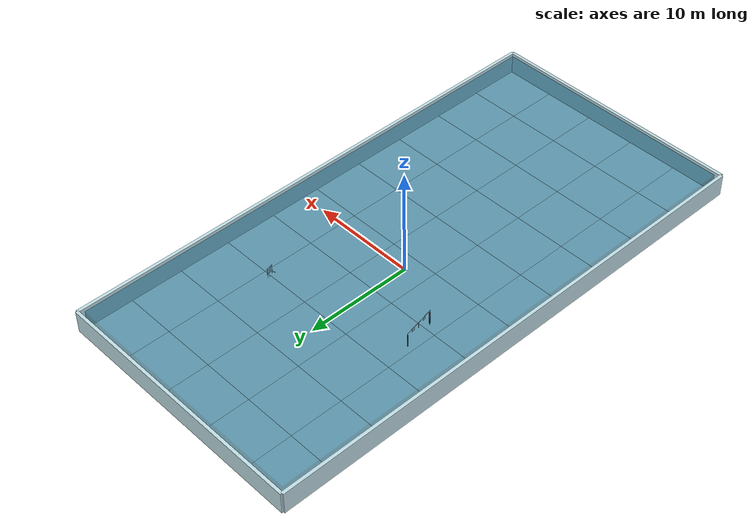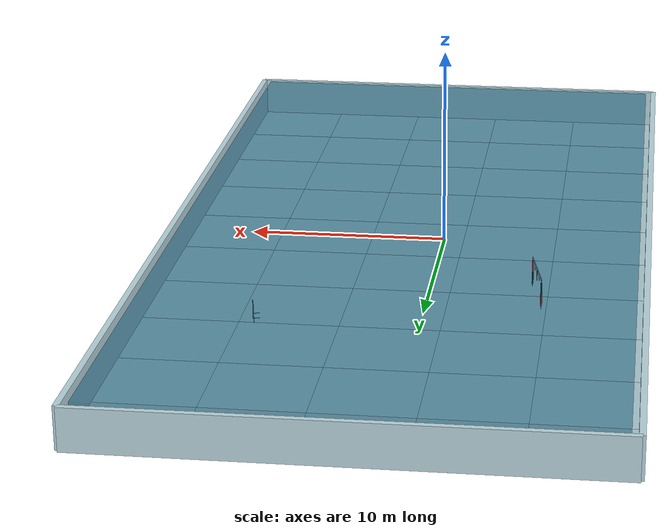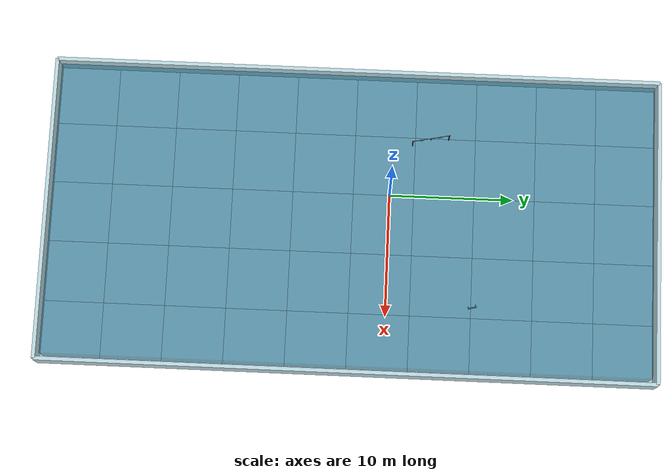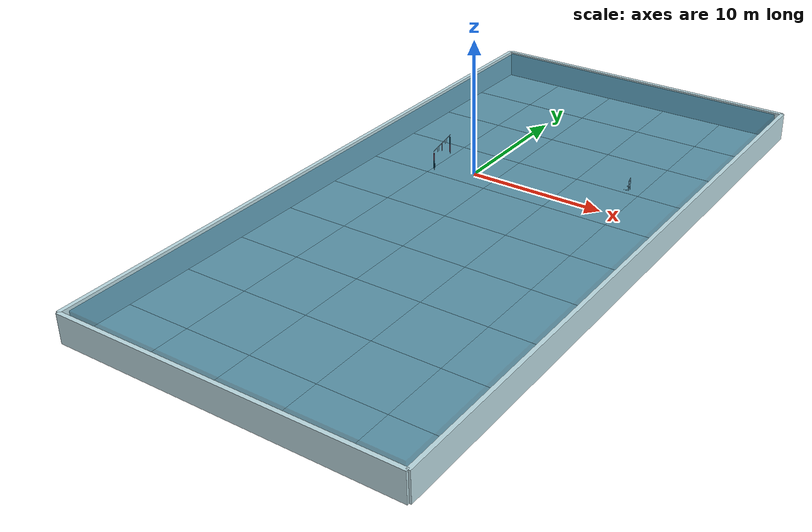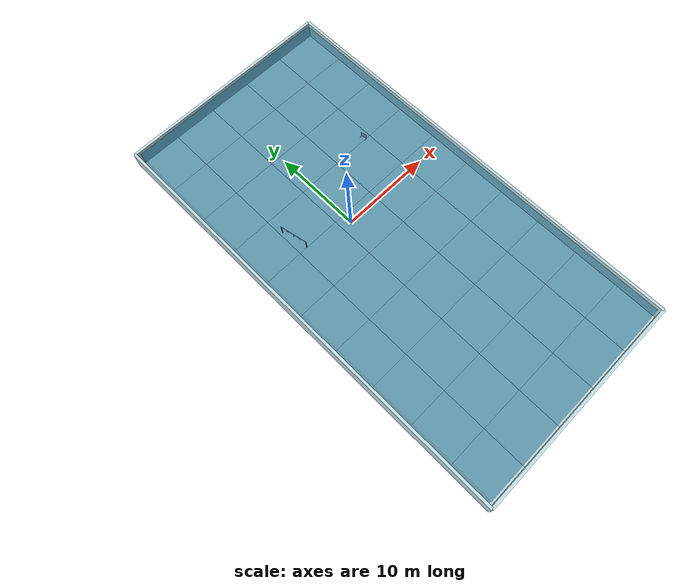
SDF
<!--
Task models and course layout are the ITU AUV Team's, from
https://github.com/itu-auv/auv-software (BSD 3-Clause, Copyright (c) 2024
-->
<sdf version="1.6">
 <world name="robosub_2026">
  <physics name="1ms" type="ignored">
   <max_step_size>0.004</max_step_size>
   <real_time_factor>1.0</real_time_factor>
   <real_time_update_rate>250</real_time_update_rate>
  </physics>
  <scene>
   <ambient>0.35 0.45 0.5 1.0</ambient>
   <background>0.3 0.5 0.6 1.0</background>
   <sky><clouds><speed>12</speed></clouds></sky>
   <shadows>true</shadows>
   <fog>
    <color>0.05 0.25 0.35 1.0</color>
    <type>linear</type>
    <density>0.01</density>
    <start>8</start>
    <end>45</end>
   </fog>
  </scene>
  <include><uri>https://fuel.gazebosim.org/1.0/OpenRobotics/models/Sun</uri></include>
  <include><uri>model://pool</uri><name>pool</name><pose>2 -3 0 0 0 0</pose></include>
  <include><uri>model://robosub_gate</uri><name>robosub_gate</name><pose>-5 3.25 -1.67 0 0 0.2</pose></include>
  <include>
   <uri>model://robosub_torpedo</uri>
   <name>robosub_torpedo</name>
   <pose>8.4 8 -2 1.57 0 -2.9</pose>
  </include>
  <plugin filename="gz-sim-physics-system" name="gz::sim::systems::Physics"/>
  <plugin filename="gz-sim-user-commands-system" name="gz::sim::systems::UserCommands"/>
  <plugin filename="gz-sim-scene-broadcaster-system" name="gz::sim::systems::SceneBroadcaster"/>
  <plugin filename="gz-sim-imu-system" name="gz::sim::systems::Imu"/>
  <plugin filename="gz-sim-dvl-system" name="gz::sim::systems::DopplerVelocityLogSystem"/>
  <plugin filename="gz-sim-sensors-system" name="gz::sim::systems::Sensors">
   <render_engine>ogre2</render_engine>
  </plugin>
  <plugin filename="gz-sim-buoyancy-system" name="gz::sim::systems::Buoyancy">
   <graded_buoyancy>
    <default_density>1000</default_density>
    <density_change><above_depth>0</above_depth><density>1</density></density_change>
   </graded_buoyancy>
   <enable>prototype_vehicle</enable>
  </plugin>
 </world>
</sdf>

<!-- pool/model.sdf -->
<sdf version="1.6">
  <model name="pool">
    <static>true</static>

    <!-- Floor: one physics collision box, a tiled grid of visual-only
         squares on top so the PBR texture keeps a 1:1 aspect ratio instead
         of stretching across the full 25x50m span. -->
    <link name="floor_link">
      <collision name="floor_collision">
        <pose>0 0 -2.18 0 0 0</pose>
        <geometry>
          <box><size>25.0 50.0 0.1</size></box>
        </geometry>
        <surface>
          <friction><ode><mu>0.5</mu><mu2>0.5</mu2></ode></friction>
          <contact><ode/></contact>
          <bounce/>
        </surface>
      </collision>
      <visual name="floor_tile_1_visual">
        <pose>-10 -22.5 -2.13 0 0 0</pose>
        <geometry>
          <box><size>5 5 0.001</size></box>
        </geometry>
          <material>
            <ambient>0.55 0.7 0.75 1</ambient>
            <diffuse>0.7 0.82 0.85 1</diffuse>
            <specular>0.2 0.2 0.2 1</specular>
            <pbr>
              <metal>
                <albedo_map>model://pool/materials/textures/pool_floor.png</albedo_map>
                <normal_map>model://pool/materials/textures/pool_floor_normal.png</normal_map>
                <roughness_map>model://pool/materials/textures/pool_floor_roughness.png</roughness_map>
                <metalness>0.0</metalness>
              </metal>
            </pbr>
          </material>
      </visual>
      <visual name="floor_tile_2_visual">
        <pose>-10 -17.5 -2.13 0 0 0</pose>
        <geometry>
          <box><size>5 5 0.001</size></box>
        </geometry>
          <material>
            <ambient>0.55 0.7 0.75 1</ambient>
            <diffuse>0.7 0.82 0.85 1</diffuse>
            <specular>0.2 0.2 0.2 1</specular>
            <pbr>
              <metal>
                <albedo_map>model://pool/materials/textures/pool_floor.png</albedo_map>
                <normal_map>model://pool/materials/textures/pool_floor_normal.png</normal_map>
                <roughness_map>model://pool/materials/textures/pool_floor_roughness.png</roughness_map>
                <metalness>0.0</metalness>
              </metal>
            </pbr>
          </material>
      </visual>
      <visual name="floor_tile_3_visual">
        <pose>-10 -12.5 -2.13 0 0 0</pose>
        <geometry>
          <box><size>5 5 0.001</size></box>
        </geometry>
          <material>
            <ambient>0.55 0.7 0.75 1</ambient>
            <diffuse>0.7 0.82 0.85 1</diffuse>
            <specular>0.2 0.2 0.2 1</specular>
            <pbr>
              <metal>
                <albedo_map>model://pool/materials/textures/pool_floor.png</albedo_map>
                <normal_map>model://pool/materials/textures/pool_floor_normal.png</normal_map>
                <roughness_map>model://pool/materials/textures/pool_floor_roughness.png</roughness_map>
                <metalness>0.0</metalness>
              </metal>
            </pbr>
          </material>
      </visual>
      <visual name="floor_tile_4_visual">
        <pose>-10 -7.5 -2.13 0 0 0</pose>
        <geometry>
          <box><size>5 5 0.001</size></box>
        </geometry>
          <material>
            <ambient>0.55 0.7 0.75 1</ambient>
            <diffuse>0.7 0.82 0.85 1</diffuse>
            <specular>0.2 0.2 0.2 1</specular>
            <pbr>
              <metal>
                <albedo_map>model://pool/materials/textures/pool_floor.png</albedo_map>
                <normal_map>model://pool/materials/textures/pool_floor_normal.png</normal_map>
                <roughness_map>model://pool/materials/textures/pool_floor_roughness.png</roughness_map>
                <metalness>0.0</metalness>
              </metal>
            </pbr>
          </material>
      </visual>
      <visual name="floor_tile_5_visual">
        <pose>-10 -2.5 -2.13 0 0 0</pose>
        <geometry>
          <box><size>5 5 0.001</size></box>
        </geometry>
          <material>
            <ambient>0.55 0.7 0.75 1</ambient>
            <diffuse>0.7 0.82 0.85 1</diffuse>
            <specular>0.2 0.2 0.2 1</specular>
            <pbr>
              <metal>
                <albedo_map>model://pool/materials/textures/pool_floor.png</albedo_map>
                <normal_map>model://pool/materials/textures/pool_floor_normal.png</normal_map>
                <roughness_map>model://pool/materials/textures/pool_floor_roughness.png</roughness_map>
                <metalness>0.0</metalness>
              </metal>
            </pbr>
          </material>
      </visual>
      <visual name="floor_tile_6_visual">
        <pose>-10 2.5 -2.13 0 0 0</pose>
        <geometry>
          <box><size>5 5 0.001</size></box>
        </geometry>
          <material>
            <ambient>0.55 0.7 0.75 1</ambient>
            <diffuse>0.7 0.82 0.85 1</diffuse>
            <specular>0.2 0.2 0.2 1</specular>
            <pbr>
              <metal>
                <albedo_map>model://pool/materials/textures/pool_floor.png</albedo_map>
                <normal_map>model://pool/materials/textures/pool_floor_normal.png</normal_map>
                <roughness_map>model://pool/materials/textures/pool_floor_roughness.png</roughness_map>
                <metalness>0.0</metalness>
              </metal>
            </pbr>
          </material>
      </visual>
      <visual name="floor_tile_7_visual">
        <pose>-10 7.5 -2.13 0 0 0</pose>
        <geometry>
          <box><size>5 5 0.001</size></box>
        </geometry>
          <material>
            <ambient>0.55 0.7 0.75 1</ambient>
            <diffuse>0.7 0.82 0.85 1</diffuse>
            <specular>0.2 0.2 0.2 1</specular>
            <pbr>
              <metal>
                <albedo_map>model://pool/materials/textures/pool_floor.png</albedo_map>
                <normal_map>model://pool/materials/textures/pool_floor_normal.png</normal_map>
                <roughness_map>model://pool/materials/textures/pool_floor_roughness.png</roughness_map>
                <metalness>0.0</metalness>
              </metal>
            </pbr>
          </material>
      </visual>
      <visual name="floor_tile_8_visual">
        <pose>-10 12.5 -2.13 0 0 0</pose>
        <geometry>
          <box><size>5 5 0.001</size></box>
        </geometry>
          <material>
            <ambient>0.55 0.7 0.75 1</ambient>
            <diffuse>0.7 0.82 0.85 1</diffuse>
            <specular>0.2 0.2 0.2 1</specular>
            <pbr>
              <metal>
                <albedo_map>model://pool/materials/textures/pool_floor.png</albedo_map>
                <normal_map>model://pool/materials/textures/pool_floor_normal.png</normal_map>
                <roughness_map>model://pool/materials/textures/pool_floor_roughness.png</roughness_map>
                <metalness>0.0</metalness>
              </metal>
            </pbr>
          </material>
      </visual>
      <visual name="floor_tile_9_visual">
        <pose>-10 17.5 -2.13 0 0 0</pose>
        <geometry>
          <box><size>5 5 0.001</size></box>
        </geometry>
          <material>
            <ambient>0.55 0.7 0.75 1</ambient>
            <diffuse>0.7 0.82 0.85 1</diffuse>
            <specular>0.2 0.2 0.2 1</specular>
            <pbr>
              <metal>
                <albedo_map>model://pool/materials/textures/pool_floor.png</albedo_map>
                <normal_map>model://pool/materials/textures/pool_floor_normal.png</normal_map>
                <roughness_map>model://pool/materials/textures/pool_floor_roughness.png</roughness_map>
                <metalness>0.0</metalness>
              </metal>
            </pbr>
          </material>
      </visual>
      <visual name="floor_tile_10_visual">
        <pose>-10 22.5 -2.13 0 0 0</pose>
        <geometry>
          <box><size>5 5 0.001</size></box>
        </geometry>
          <material>
            <ambient>0.55 0.7 0.75 1</ambient>
            <diffuse>0.7 0.82 0.85 1</diffuse>
            <specular>0.2 0.2 0.2 1</specular>
            <pbr>
              <metal>
                <albedo_map>model://pool/materials/textures/pool_floor.png</albedo_map>
                <normal_map>model://pool/materials/textures/pool_floor_normal.png</normal_map>
                <roughness_map>model://pool/materials/textures/pool_floor_roughness.png</roughness_map>
                <metalness>0.0</metalness>
              </metal>
            </pbr>
          </material>
      </visual>
      <visual name="floor_tile_11_visual">
        <pose>-5 -22.5 -2.13 0 0 0</pose>
        <geometry>
          <box><size>5 5 0.001</size></box>
        </geometry>
          <material>
            <ambient>0.55 0.7 0.75 1</ambient>
            <diffuse>0.7 0.82 0.85 1</diffuse>
            <specular>0.2 0.2 0.2 1</specular>
            <pbr>
              <metal>
                <albedo_map>model://pool/materials/textures/pool_floor.png</albedo_map>
                <normal_map>model://pool/materials/textures/pool_floor_normal.png</normal_map>
                <roughness_map>model://pool/materials/textures/pool_floor_roughness.png</roughness_map>
                <metalness>0.0</metalness>
              </metal>
            </pbr>
          </material>
      </visual>
      <visual name="floor_tile_12_visual">
        <pose>-5 -17.5 -2.13 0 0 0</pose>
        <geometry>
          <box><size>5 5 0.001</size></box>
        </geometry>
          <material>
            <ambient>0.55 0.7 0.75 1</ambient>
            <diffuse>0.7 0.82 0.85 1</diffuse>
            <specular>0.2 0.2 0.2 1</specular>
            <pbr>
              <metal>
                <albedo_map>model://pool/materials/textures/pool_floor.png</albedo_map>
                <normal_map>model://pool/materials/textures/pool_floor_normal.png</normal_map>
                <roughness_map>model://pool/materials/textures/pool_floor_roughness.png</roughness_map>
                <metalness>0.0</metalness>
              </metal>
            </pbr>
          </material>
      </visual>
      <visual name="floor_tile_13_visual">
        <pose>-5 -12.5 -2.13 0 0 0</pose>
        <geometry>
          <box><size>5 5 0.001</size></box>
        </geometry>
          <material>
            <ambient>0.55 0.7 0.75 1</ambient>
            <diffuse>0.7 0.82 0.85 1</diffuse>
            <specular>0.2 0.2 0.2 1</specular>
            <pbr>
              <metal>
                <albedo_map>model://pool/materials/textures/pool_floor.png</albedo_map>
                <normal_map>model://pool/materials/textures/pool_floor_normal.png</normal_map>
                <roughness_map>model://pool/materials/textures/pool_floor_roughness.png</roughness_map>
                <metalness>0.0</metalness>
              </metal>
            </pbr>
          </material>
      </visual>
      <visual name="floor_tile_14_visual">
        <pose>-5 -7.5 -2.13 0 0 0</pose>
        <geometry>
          <box><size>5 5 0.001</size></box>
        </geometry>
          <material>
            <ambient>0.55 0.7 0.75 1</ambient>
            <diffuse>0.7 0.82 0.85 1</diffuse>
            <specular>0.2 0.2 0.2 1</specular>
            <pbr>
              <metal>
                <albedo_map>model://pool/materials/textures/pool_floor.png</albedo_map>
                <normal_map>model://pool/materials/textures/pool_floor_normal.png</normal_map>
                <roughness_map>model://pool/materials/textures/pool_floor_roughness.png</roughness_map>
                <metalness>0.0</metalness>
              </metal>
            </pbr>
          </material>
      </visual>
      <visual name="floor_tile_15_visual">
        <pose>-5 -2.5 -2.13 0 0 0</pose>
        <geometry>
          <box><size>5 5 0.001</size></box>
        </geometry>
          <material>
            <ambient>0.55 0.7 0.75 1</ambient>
            <diffuse>0.7 0.82 0.85 1</diffuse>
            <specular>0.2 0.2 0.2 1</specular>
            <pbr>
              <metal>
                <albedo_map>model://pool/materials/textures/pool_floor.png</albedo_map>
                <normal_map>model://pool/materials/textures/pool_floor_normal.png</normal_map>
                <roughness_map>model://pool/materials/textures/pool_floor_roughness.png</roughness_map>
                <metalness>0.0</metalness>
              </metal>
            </pbr>
          </material>
      </visual>
      <visual name="floor_tile_16_visual">
        <pose>-5 2.5 -2.13 0 0 0</pose>
        <geometry>
          <box><size>5 5 0.001</size></box>
        </geometry>
          <material>
            <ambient>0.55 0.7 0.75 1</ambient>
            <diffuse>0.7 0.82 0.85 1</diffuse>
            <specular>0.2 0.2 0.2 1</specular>
            <pbr>
              <metal>
                <albedo_map>model://pool/materials/textures/pool_floor.png</albedo_map>
                <normal_map>model://pool/materials/textures/pool_floor_normal.png</normal_map>
                <roughness_map>model://pool/materials/textures/pool_floor_roughness.png</roughness_map>
                <metalness>0.0</metalness>
              </metal>
            </pbr>
          </material>
      </visual>
      <visual name="floor_tile_17_visual">
        <pose>-5 7.5 -2.13 0 0 0</pose>
        <geometry>
          <box><size>5 5 0.001</size></box>
        </geometry>
          <material>
            <ambient>0.55 0.7 0.75 1</ambient>
            <diffuse>0.7 0.82 0.85 1</diffuse>
            <specular>0.2 0.2 0.2 1</specular>
            <pbr>
              <metal>
                <albedo_map>model://pool/materials/textures/pool_floor.png</albedo_map>
                <normal_map>model://pool/materials/textures/pool_floor_normal.png</normal_map>
                <roughness_map>model://pool/materials/textures/pool_floor_roughness.png</roughness_map>
                <metalness>0.0</metalness>
              </metal>
            </pbr>
          </material>
      </visual>
      <visual name="floor_tile_18_visual">
        <pose>-5 12.5 -2.13 0 0 0</pose>
        <geometry>
          <box><size>5 5 0.001</size></box>
        </geometry>
          <material>
            <ambient>0.55 0.7 0.75 1</ambient>
            <diffuse>0.7 0.82 0.85 1</diffuse>
            <specular>0.2 0.2 0.2 1</specular>
            <pbr>
              <metal>
                <albedo_map>model://pool/materials/textures/pool_floor.png</albedo_map>
                <normal_map>model://pool/materials/textures/pool_floor_normal.png</normal_map>
                <roughness_map>model://pool/materials/textures/pool_floor_roughness.png</roughness_map>
                <metalness>0.0</metalness>
              </metal>
            </pbr>
          </material>
      </visual>
      <visual name="floor_tile_19_visual">
        <pose>-5 17.5 -2.13 0 0 0</pose>
        <geometry>
          <box><size>5 5 0.001</size></box>
        </geometry>
          <material>
            <ambient>0.55 0.7 0.75 1</ambient>
            <diffuse>0.7 0.82 0.85 1</diffuse>
            <specular>0.2 0.2 0.2 1</specular>
            <pbr>
              <metal>
                <albedo_map>model://pool/materials/textures/pool_floor.png</albedo_map>
                <normal_map>model://pool/materials/textures/pool_floor_normal.png</normal_map>
                <roughness_map>model://pool/materials/textures/pool_floor_roughness.png</roughness_map>
                <metalness>0.0</metalness>
              </metal>
            </pbr>
          </material>
      </visual>
      <visual name="floor_tile_20_visual">
        <pose>-5 22.5 -2.13 0 0 0</pose>
        <geometry>
          <box><size>5 5 0.001</size></box>
        </geometry>
          <material>
            <ambient>0.55 0.7 0.75 1</ambient>
            <diffuse>0.7 0.82 0.85 1</diffuse>
            <specular>0.2 0.2 0.2 1</specular>
            <pbr>
              <metal>
                <albedo_map>model://pool/materials/textures/pool_floor.png</albedo_map>
                <normal_map>model://pool/materials/textures/pool_floor_normal.png</normal_map>
                <roughness_map>model://pool/materials/textures/pool_floor_roughness.png</roughness_map>
                <metalness>0.0</metalness>
              </metal>
            </pbr>
          </material>
      </visual>
      <visual name="floor_tile_21_visual">
        <pose>0 -22.5 -2.13 0 0 0</pose>
        <geometry>
          <box><size>5 5 0.001</size></box>
        </geometry>
          <material>
            <ambient>0.55 0.7 0.75 1</ambient>
            <diffuse>0.7 0.82 0.85 1</diffuse>
            <specular>0.2 0.2 0.2 1</specular>
            <pbr>
              <metal>
                <albedo_map>model://pool/materials/textures/pool_floor.png</albedo_map>
                <normal_map>model://pool/materials/textures/pool_floor_normal.png</normal_map>
                <roughness_map>model://pool/materials/textures/pool_floor_roughness.png</roughness_map>
                <metalness>0.0</metalness>
              </metal>
            </pbr>
          </material>
      </visual>
      <visual name="floor_tile_22_visual">
        <pose>0 -17.5 -2.13 0 0 0</pose>
        <geometry>
          <box><size>5 5 0.001</size></box>
        </geometry>
          <material>
            <ambient>0.55 0.7 0.75 1</ambient>
            <diffuse>0.7 0.82 0.85 1</diffuse>
            <specular>0.2 0.2 0.2 1</specular>
            <pbr>
              <metal>
                <albedo_map>model://pool/materials/textures/pool_floor.png</albedo_map>
                <normal_map>model://pool/materials/textures/pool_floor_normal.png</normal_map>
                <roughness_map>model://pool/materials/textures/pool_floor_roughness.png</roughness_map>
                <metalness>0.0</metalness>
              </metal>
            </pbr>
          </material>
      </visual>
      <visual name="floor_tile_23_visual">
        <pose>0 -12.5 -2.13 0 0 0</pose>
        <geometry>
          <box><size>5 5 0.001</size></box>
        </geometry>
          <material>
            <ambient>0.55 0.7 0.75 1</ambient>
            <diffuse>0.7 0.82 0.85 1</diffuse>
            <specular>0.2 0.2 0.2 1</specular>
            <pbr>
              <metal>
                <albedo_map>model://pool/materials/textures/pool_floor.png</albedo_map>
                <normal_map>model://pool/materials/textures/pool_floor_normal.png</normal_map>
                <roughness_map>model://pool/materials/textures/pool_floor_roughness.png</roughness_map>
                <metalness>0.0</metalness>
              </metal>
            </pbr>
          </material>
      </visual>
      <visual name="floor_tile_24_visual">
        <pose>0 -7.5 -2.13 0 0 0</pose>
        <geometry>
          <box><size>5 5 0.001</size></box>
        </geometry>
          <material>
            <ambient>0.55 0.7 0.75 1</ambient>
            <diffuse>0.7 0.82 0.85 1</diffuse>
            <specular>0.2 0.2 0.2 1</specular>
            <pbr>
              <metal>
                <albedo_map>model://pool/materials/textures/pool_floor.png</albedo_map>
                <normal_map>model://pool/materials/textures/pool_floor_normal.png</normal_map>
                <roughness_map>model://pool/materials/textures/pool_floor_roughness.png</roughness_map>
                <metalness>0.0</metalness>
              </metal>
            </pbr>
          </material>
      </visual>
      <visual name="floor_tile_25_visual">
        <pose>0 -2.5 -2.13 0 0 0</pose>
        <geometry>
          <box><size>5 5 0.001</size></box>
        </geometry>
          <material>
            <ambient>0.55 0.7 0.75 1</ambient>
            <diffuse>0.7 0.82 0.85 1</diffuse>
            <specular>0.2 0.2 0.2 1</specular>
            <pbr>
              <metal>
                <albedo_map>model://pool/materials/textures/pool_floor.png</albedo_map>
                <normal_map>model://pool/materials/textures/pool_floor_normal.png</normal_map>
                <roughness_map>model://pool/materials/textures/pool_floor_roughness.png</roughness_map>
                <metalness>0.0</metalness>
              </metal>
            </pbr>
          </material>
      </visual>
      <visual name="floor_tile_26_visual">
        <pose>0 2.5 -2.13 0 0 0</pose>
        <geometry>
          <box><size>5 5 0.001</size></box>
        </geometry>
          <material>
            <ambient>0.55 0.7 0.75 1</ambient>
            <diffuse>0.7 0.82 0.85 1</diffuse>
            <specular>0.2 0.2 0.2 1</specular>
            <pbr>
              <metal>
                <albedo_map>model://pool/materials/textures/pool_floor.png</albedo_map>
                <normal_map>model://pool/materials/textures/pool_floor_normal.png</normal_map>
                <roughness_map>model://pool/materials/textures/pool_floor_roughness.png</roughness_map>
                <metalness>0.0</metalness>
              </metal>
            </pbr>
          </material>
      </visual>
      <visual name="floor_tile_27_visual">
        <pose>0 7.5 -2.13 0 0 0</pose>
        <geometry>
          <box><size>5 5 0.001</size></box>
        </geometry>
          <material>
            <ambient>0.55 0.7 0.75 1</ambient>
            <diffuse>0.7 0.82 0.85 1</diffuse>
            <specular>0.2 0.2 0.2 1</specular>
            <pbr>
              <metal>
                <albedo_map>model://pool/materials/textures/pool_floor.png</albedo_map>
                <normal_map>model://pool/materials/textures/pool_floor_normal.png</normal_map>
                <roughness_map>model://pool/materials/textures/pool_floor_roughness.png</roughness_map>
                <metalness>0.0</metalness>
              </metal>
            </pbr>
          </material>
      </visual>
      <visual name="floor_tile_28_visual">
        <pose>0 12.5 -2.13 0 0 0</pose>
        <geometry>
          <box><size>5 5 0.001</size></box>
        </geometry>
          <material>
            <ambient>0.55 0.7 0.75 1</ambient>
            <diffuse>0.7 0.82 0.85 1</diffuse>
            <specular>0.2 0.2 0.2 1</specular>
            <pbr>
              <metal>
                <albedo_map>model://pool/materials/textures/pool_floor.png</albedo_map>
                <normal_map>model://pool/materials/textures/pool_floor_normal.png</normal_map>
                <roughness_map>model://pool/materials/textures/pool_floor_roughness.png</roughness_map>
                <metalness>0.0</metalness>
              </metal>
            </pbr>
          </material>
      </visual>
      <visual name="floor_tile_29_visual">
        <pose>0 17.5 -2.13 0 0 0</pose>
        <geometry>
          <box><size>5 5 0.001</size></box>
        </geometry>
          <material>
            <ambient>0.55 0.7 0.75 1</ambient>
            <diffuse>0.7 0.82 0.85 1</diffuse>
            <specular>0.2 0.2 0.2 1</specular>
            <pbr>
              <metal>
                <albedo_map>model://pool/materials/textures/pool_floor.png</albedo_map>
                <normal_map>model://pool/materials/textures/pool_floor_normal.png</normal_map>
                <roughness_map>model://pool/materials/textures/pool_floor_roughness.png</roughness_map>
                <metalness>0.0</metalness>
              </metal>
            </pbr>
          </material>
      </visual>
      <visual name="floor_tile_30_visual">
        <pose>0 22.5 -2.13 0 0 0</pose>
        <geometry>
          <box><size>5 5 0.001</size></box>
        </geometry>
          <material>
            <ambient>0.55 0.7 0.75 1</ambient>
            <diffuse>0.7 0.82 0.85 1</diffuse>
            <specular>0.2 0.2 0.2 1</specular>
            <pbr>
              <metal>
                <albedo_map>model://pool/materials/textures/pool_floor.png</albedo_map>
                <normal_map>model://pool/materials/textures/pool_floor_normal.png</normal_map>
                <roughness_map>model://pool/materials/textures/pool_floor_roughness.png</roughness_map>
                <metalness>0.0</metalness>
              </metal>
            </pbr>
          </material>
      </visual>
      <visual name="floor_tile_31_visual">
        <pose>5 -22.5 -2.13 0 0 0</pose>
        <geometry>
          <box><size>5 5 0.001</size></box>
        </geometry>
          <material>
            <ambient>0.55 0.7 0.75 1</ambient>
            <diffuse>0.7 0.82 0.85 1</diffuse>
            <specular>0.2 0.2 0.2 1</specular>
            <pbr>
              <metal>
                <albedo_map>model://pool/materials/textures/pool_floor.png</albedo_map>
                <normal_map>model://pool/materials/textures/pool_floor_normal.png</normal_map>
                <roughness_map>model://pool/materials/textures/pool_floor_roughness.png</roughness_map>
                <metalness>0.0</metalness>
              </metal>
            </pbr>
          </material>
      </visual>
      <visual name="floor_tile_32_visual">
        <pose>5 -17.5 -2.13 0 0 0</pose>
        <geometry>
          <box><size>5 5 0.001</size></box>
        </geometry>
          <material>
            <ambient>0.55 0.7 0.75 1</ambient>
            <diffuse>0.7 0.82 0.85 1</diffuse>
            <specular>0.2 0.2 0.2 1</specular>
            <pbr>
              <metal>
                <albedo_map>model://pool/materials/textures/pool_floor.png</albedo_map>
                <normal_map>model://pool/materials/textures/pool_floor_normal.png</normal_map>
                <roughness_map>model://pool/materials/textures/pool_floor_roughness.png</roughness_map>
                <metalness>0.0</metalness>
              </metal>
            </pbr>
          </material>
      </visual>
      <visual name="floor_tile_33_visual">
        <pose>5 -12.5 -2.13 0 0 0</pose>
        <geometry>
          <box><size>5 5 0.001</size></box>
        </geometry>
          <material>
            <ambient>0.55 0.7 0.75 1</ambient>
            <diffuse>0.7 0.82 0.85 1</diffuse>
            <specular>0.2 0.2 0.2 1</specular>
            <pbr>
              <metal>
                <albedo_map>model://pool/materials/textures/pool_floor.png</albedo_map>
                <normal_map>model://pool/materials/textures/pool_floor_normal.png</normal_map>
                <roughness_map>model://pool/materials/textures/pool_floor_roughness.png</roughness_map>
                <metalness>0.0</metalness>
              </metal>
            </pbr>
          </material>
      </visual>
      <visual name="floor_tile_34_visual">
        <pose>5 -7.5 -2.13 0 0 0</pose>
        <geometry>
          <box><size>5 5 0.001</size></box>
        </geometry>
          <material>
            <ambient>0.55 0.7 0.75 1</ambient>
            <diffuse>0.7 0.82 0.85 1</diffuse>
            <specular>0.2 0.2 0.2 1</specular>
            <pbr>
              <metal>
                <albedo_map>model://pool/materials/textures/pool_floor.png</albedo_map>
                <normal_map>model://pool/materials/textures/pool_floor_normal.png</normal_map>
                <roughness_map>model://pool/materials/textures/pool_floor_roughness.png</roughness_map>
                <metalness>0.0</metalness>
              </metal>
            </pbr>
          </material>
      </visual>
      <visual name="floor_tile_35_visual">
        <pose>5 -2.5 -2.13 0 0 0</pose>
        <geometry>
          <box><size>5 5 0.001</size></box>
        </geometry>
          <material>
            <ambient>0.55 0.7 0.75 1</ambient>
            <diffuse>0.7 0.82 0.85 1</diffuse>
            <specular>0.2 0.2 0.2 1</specular>
            <pbr>
              <metal>
                <albedo_map>model://pool/materials/textures/pool_floor.png</albedo_map>
                <normal_map>model://pool/materials/textures/pool_floor_normal.png</normal_map>
                <roughness_map>model://pool/materials/textures/pool_floor_roughness.png</roughness_map>
                <metalness>0.0</metalness>
              </metal>
            </pbr>
          </material>
      </visual>
      <visual name="floor_tile_36_visual">
        <pose>5 2.5 -2.13 0 0 0</pose>
        <geometry>
          <box><size>5 5 0.001</size></box>
        </geometry>
          <material>
            <ambient>0.55 0.7 0.75 1</ambient>
            <diffuse>0.7 0.82 0.85 1</diffuse>
            <specular>0.2 0.2 0.2 1</specular>
            <pbr>
              <metal>
                <albedo_map>model://pool/materials/textures/pool_floor.png</albedo_map>
                <normal_map>model://pool/materials/textures/pool_floor_normal.png</normal_map>
                <roughness_map>model://pool/materials/textures/pool_floor_roughness.png</roughness_map>
                <metalness>0.0</metalness>
              </metal>
            </pbr>
          </material>
      </visual>
      <visual name="floor_tile_37_visual">
        <pose>5 7.5 -2.13 0 0 0</pose>
        <geometry>
          <box><size>5 5 0.001</size></box>
        </geometry>
          <material>
            <ambient>0.55 0.7 0.75 1</ambient>
            <diffuse>0.7 0.82 0.85 1</diffuse>
            <specular>0.2 0.2 0.2 1</specular>
            <pbr>
              <metal>
                <albedo_map>model://pool/materials/textures/pool_floor.png</albedo_map>
                <normal_map>model://pool/materials/textures/pool_floor_normal.png</normal_map>
                <roughness_map>model://pool/materials/textures/pool_floor_roughness.png</roughness_map>
                <metalness>0.0</metalness>
              </metal>
            </pbr>
          </material>
      </visual>
      <visual name="floor_tile_38_visual">
        <pose>5 12.5 -2.13 0 0 0</pose>
        <geometry>
          <box><size>5 5 0.001</size></box>
        </geometry>
          <material>
            <ambient>0.55 0.7 0.75 1</ambient>
            <diffuse>0.7 0.82 0.85 1</diffuse>
            <specular>0.2 0.2 0.2 1</specular>
            <pbr>
              <metal>
                <albedo_map>model://pool/materials/textures/pool_floor.png</albedo_map>
                <normal_map>model://pool/materials/textures/pool_floor_normal.png</normal_map>
                <roughness_map>model://pool/materials/textures/pool_floor_roughness.png</roughness_map>
                <metalness>0.0</metalness>
              </metal>
            </pbr>
          </material>
      </visual>
      <visual name="floor_tile_39_visual">
        <pose>5 17.5 -2.13 0 0 0</pose>
        <geometry>
          <box><size>5 5 0.001</size></box>
        </geometry>
          <material>
            <ambient>0.55 0.7 0.75 1</ambient>
            <diffuse>0.7 0.82 0.85 1</diffuse>
            <specular>0.2 0.2 0.2 1</specular>
            <pbr>
              <metal>
                <albedo_map>model://pool/materials/textures/pool_floor.png</albedo_map>
                <normal_map>model://pool/materials/textures/pool_floor_normal.png</normal_map>
                <roughness_map>model://pool/materials/textures/pool_floor_roughness.png</roughness_map>
                <metalness>0.0</metalness>
              </metal>
            </pbr>
          </material>
      </visual>
      <visual name="floor_tile_40_visual">
        <pose>5 22.5 -2.13 0 0 0</pose>
        <geometry>
          <box><size>5 5 0.001</size></box>
        </geometry>
          <material>
            <ambient>0.55 0.7 0.75 1</ambient>
            <diffuse>0.7 0.82 0.85 1</diffuse>
            <specular>0.2 0.2 0.2 1</specular>
            <pbr>
              <metal>
                <albedo_map>model://pool/materials/textures/pool_floor.png</albedo_map>
                <normal_map>model://pool/materials/textures/pool_floor_normal.png</normal_map>
                <roughness_map>model://pool/materials/textures/pool_floor_roughness.png</roughness_map>
                <metalness>0.0</metalness>
              </metal>
            </pbr>
          </material>
      </visual>
      <visual name="floor_tile_41_visual">
        <pose>10 -22.5 -2.13 0 0 0</pose>
        <geometry>
          <box><size>5 5 0.001</size></box>
        </geometry>
          <material>
            <ambient>0.55 0.7 0.75 1</ambient>
            <diffuse>0.7 0.82 0.85 1</diffuse>
            <specular>0.2 0.2 0.2 1</specular>
            <pbr>
              <metal>
                <albedo_map>model://pool/materials/textures/pool_floor.png</albedo_map>
                <normal_map>model://pool/materials/textures/pool_floor_normal.png</normal_map>
                <roughness_map>model://pool/materials/textures/pool_floor_roughness.png</roughness_map>
                <metalness>0.0</metalness>
              </metal>
            </pbr>
          </material>
      </visual>
      <visual name="floor_tile_42_visual">
        <pose>10 -17.5 -2.13 0 0 0</pose>
        <geometry>
          <box><size>5 5 0.001</size></box>
        </geometry>
          <material>
            <ambient>0.55 0.7 0.75 1</ambient>
            <diffuse>0.7 0.82 0.85 1</diffuse>
            <specular>0.2 0.2 0.2 1</specular>
            <pbr>
              <metal>
                <albedo_map>model://pool/materials/textures/pool_floor.png</albedo_map>
                <normal_map>model://pool/materials/textures/pool_floor_normal.png</normal_map>
                <roughness_map>model://pool/materials/textures/pool_floor_roughness.png</roughness_map>
                <metalness>0.0</metalness>
              </metal>
            </pbr>
          </material>
      </visual>
      <visual name="floor_tile_43_visual">
        <pose>10 -12.5 -2.13 0 0 0</pose>
        <geometry>
          <box><size>5 5 0.001</size></box>
        </geometry>
          <material>
            <ambient>0.55 0.7 0.75 1</ambient>
            <diffuse>0.7 0.82 0.85 1</diffuse>
            <specular>0.2 0.2 0.2 1</specular>
            <pbr>
              <metal>
                <albedo_map>model://pool/materials/textures/pool_floor.png</albedo_map>
                <normal_map>model://pool/materials/textures/pool_floor_normal.png</normal_map>
                <roughness_map>model://pool/materials/textures/pool_floor_roughness.png</roughness_map>
                <metalness>0.0</metalness>
              </metal>
            </pbr>
          </material>
      </visual>
      <visual name="floor_tile_44_visual">
        <pose>10 -7.5 -2.13 0 0 0</pose>
        <geometry>
          <box><size>5 5 0.001</size></box>
        </geometry>
          <material>
            <ambient>0.55 0.7 0.75 1</ambient>
            <diffuse>0.7 0.82 0.85 1</diffuse>
            <specular>0.2 0.2 0.2 1</specular>
            <pbr>
              <metal>
                <albedo_map>model://pool/materials/textures/pool_floor.png</albedo_map>
                <normal_map>model://pool/materials/textures/pool_floor_normal.png</normal_map>
                <roughness_map>model://pool/materials/textures/pool_floor_roughness.png</roughness_map>
                <metalness>0.0</metalness>
              </metal>
            </pbr>
          </material>
      </visual>
      <visual name="floor_tile_45_visual">
        <pose>10 -2.5 -2.13 0 0 0</pose>
        <geometry>
          <box><size>5 5 0.001</size></box>
        </geometry>
          <material>
            <ambient>0.55 0.7 0.75 1</ambient>
            <diffuse>0.7 0.82 0.85 1</diffuse>
            <specular>0.2 0.2 0.2 1</specular>
            <pbr>
              <metal>
                <albedo_map>model://pool/materials/textures/pool_floor.png</albedo_map>
                <normal_map>model://pool/materials/textures/pool_floor_normal.png</normal_map>
                <roughness_map>model://pool/materials/textures/pool_floor_roughness.png</roughness_map>
                <metalness>0.0</metalness>
              </metal>
            </pbr>
          </material>
      </visual>
      <visual name="floor_tile_46_visual">
        <pose>10 2.5 -2.13 0 0 0</pose>
        <geometry>
          <box><size>5 5 0.001</size></box>
        </geometry>
          <material>
            <ambient>0.55 0.7 0.75 1</ambient>
            <diffuse>0.7 0.82 0.85 1</diffuse>
            <specular>0.2 0.2 0.2 1</specular>
            <pbr>
              <metal>
                <albedo_map>model://pool/materials/textures/pool_floor.png</albedo_map>
                <normal_map>model://pool/materials/textures/pool_floor_normal.png</normal_map>
                <roughness_map>model://pool/materials/textures/pool_floor_roughness.png</roughness_map>
                <metalness>0.0</metalness>
              </metal>
            </pbr>
          </material>
      </visual>
      <visual name="floor_tile_47_visual">
        <pose>10 7.5 -2.13 0 0 0</pose>
        <geometry>
          <box><size>5 5 0.001</size></box>
        </geometry>
          <material>
            <ambient>0.55 0.7 0.75 1</ambient>
            <diffuse>0.7 0.82 0.85 1</diffuse>
            <specular>0.2 0.2 0.2 1</specular>
            <pbr>
              <metal>
                <albedo_map>model://pool/materials/textures/pool_floor.png</albedo_map>
                <normal_map>model://pool/materials/textures/pool_floor_normal.png</normal_map>
                <roughness_map>model://pool/materials/textures/pool_floor_roughness.png</roughness_map>
                <metalness>0.0</metalness>
              </metal>
            </pbr>
          </material>
      </visual>
      <visual name="floor_tile_48_visual">
        <pose>10 12.5 -2.13 0 0 0</pose>
        <geometry>
          <box><size>5 5 0.001</size></box>
        </geometry>
          <material>
            <ambient>0.55 0.7 0.75 1</ambient>
            <diffuse>0.7 0.82 0.85 1</diffuse>
            <specular>0.2 0.2 0.2 1</specular>
            <pbr>
              <metal>
                <albedo_map>model://pool/materials/textures/pool_floor.png</albedo_map>
                <normal_map>model://pool/materials/textures/pool_floor_normal.png</normal_map>
                <roughness_map>model://pool/materials/textures/pool_floor_roughness.png</roughness_map>
                <metalness>0.0</metalness>
              </metal>
            </pbr>
          </material>
      </visual>
      <visual name="floor_tile_49_visual">
        <pose>10 17.5 -2.13 0 0 0</pose>
        <geometry>
          <box><size>5 5 0.001</size></box>
        </geometry>
          <material>
            <ambient>0.55 0.7 0.75 1</ambient>
            <diffuse>0.7 0.82 0.85 1</diffuse>
            <specular>0.2 0.2 0.2 1</specular>
            <pbr>
              <metal>
                <albedo_map>model://pool/materials/textures/pool_floor.png</albedo_map>
                <normal_map>model://pool/materials/textures/pool_floor_normal.png</normal_map>
                <roughness_map>model://pool/materials/textures/pool_floor_roughness.png</roughness_map>
                <metalness>0.0</metalness>
              </metal>
            </pbr>
          </material>
      </visual>
      <visual name="floor_tile_50_visual">
        <pose>10 22.5 -2.13 0 0 0</pose>
        <geometry>
          <box><size>5 5 0.001</size></box>
        </geometry>
          <material>
            <ambient>0.55 0.7 0.75 1</ambient>
            <diffuse>0.7 0.82 0.85 1</diffuse>
            <specular>0.2 0.2 0.2 1</specular>
            <pbr>
              <metal>
                <albedo_map>model://pool/materials/textures/pool_floor.png</albedo_map>
                <normal_map>model://pool/materials/textures/pool_floor_normal.png</normal_map>
                <roughness_map>model://pool/materials/textures/pool_floor_roughness.png</roughness_map>
                <metalness>0.0</metalness>
              </metal>
            </pbr>
          </material>
      </visual>
    </link>

    <!-- Walls: one collision box per side, one visual per side (tiled floor
         gets the careful treatment because the downward camera stares at it;
         walls are rarely seen up close). -->
    <link name="walls_link">
      <collision name="wall_north_collision">
        <pose>0 25 -1.065 0 0 0</pose>
        <geometry>
          <box><size>25 0.3 2.13</size></box>
        </geometry>
        <surface>
          <friction><ode><mu>0.5</mu><mu2>0.5</mu2></ode></friction>
          <contact><ode/></contact>
          <bounce/>
        </surface>
      </collision>
      <visual name="wall_north_visual">
        <pose>0 25 -1.065 0 0 0</pose>
        <geometry>
          <box><size>25 0.3 2.13</size></box>
        </geometry>
          <material>
            <ambient>0.6 0.75 0.8 1</ambient>
            <diffuse>0.75 0.87 0.9 1</diffuse>
            <specular>0.2 0.2 0.2 1</specular>
            <pbr>
              <metal>
                <albedo_map>model://pool/materials/textures/pool_tile.png</albedo_map>
                <normal_map>model://pool/materials/textures/pool_tile_normal.png</normal_map>
                <roughness_map>model://pool/materials/textures/pool_tile_roughness.png</roughness_map>
                <metalness>0.0</metalness>
              </metal>
            </pbr>
          </material>
      </visual>
      <collision name="wall_south_collision">
        <pose>0 -25 -1.065 0 0 0</pose>
        <geometry>
          <box><size>25 0.3 2.13</size></box>
        </geometry>
        <surface>
          <friction><ode><mu>0.5</mu><mu2>0.5</mu2></ode></friction>
          <contact><ode/></contact>
          <bounce/>
        </surface>
      </collision>
      <visual name="wall_south_visual">
        <pose>0 -25 -1.065 0 0 0</pose>
        <geometry>
          <box><size>25 0.3 2.13</size></box>
        </geometry>
          <material>
            <ambient>0.6 0.75 0.8 1</ambient>
            <diffuse>0.75 0.87 0.9 1</diffuse>
            <specular>0.2 0.2 0.2 1</specular>
            <pbr>
              <metal>
                <albedo_map>model://pool/materials/textures/pool_tile.png</albedo_map>
                <normal_map>model://pool/materials/textures/pool_tile_normal.png</normal_map>
                <roughness_map>model://pool/materials/textures/pool_tile_roughness.png</roughness_map>
                <metalness>0.0</metalness>
              </metal>
            </pbr>
          </material>
      </visual>
      <collision name="wall_west_collision">
        <pose>-12.5 0 -1.065 0 0 0</pose>
        <geometry>
          <box><size>0.3 50 2.13</size></box>
        </geometry>
        <surface>
          <friction><ode><mu>0.5</mu><mu2>0.5</mu2></ode></friction>
          <contact><ode/></contact>
          <bounce/>
        </surface>
      </collision>
      <visual name="wall_west_visual">
        <pose>-12.5 0 -1.065 0 0 0</pose>
        <geometry>
          <box><size>0.3 50 2.13</size></box>
        </geometry>
          <material>
            <ambient>0.6 0.75 0.8 1</ambient>
            <diffuse>0.75 0.87 0.9 1</diffuse>
            <specular>0.2 0.2 0.2 1</specular>
            <pbr>
              <metal>
                <albedo_map>model://pool/materials/textures/pool_tile.png</albedo_map>
                <normal_map>model://pool/materials/textures/pool_tile_normal.png</normal_map>
                <roughness_map>model://pool/materials/textures/pool_tile_roughness.png</roughness_map>
                <metalness>0.0</metalness>
              </metal>
            </pbr>
          </material>
      </visual>
      <collision name="wall_east_collision">
        <pose>12.5 0 -1.065 0 0 0</pose>
        <geometry>
          <box><size>0.3 50 2.13</size></box>
        </geometry>
        <surface>
          <friction><ode><mu>0.5</mu><mu2>0.5</mu2></ode></friction>
          <contact><ode/></contact>
          <bounce/>
        </surface>
      </collision>
      <visual name="wall_east_visual">
        <pose>12.5 0 -1.065 0 0 0</pose>
        <geometry>
          <box><size>0.3 50 2.13</size></box>
        </geometry>
          <material>
            <ambient>0.6 0.75 0.8 1</ambient>
            <diffuse>0.75 0.87 0.9 1</diffuse>
            <specular>0.2 0.2 0.2 1</specular>
            <pbr>
              <metal>
                <albedo_map>model://pool/materials/textures/pool_tile.png</albedo_map>
                <normal_map>model://pool/materials/textures/pool_tile_normal.png</normal_map>
                <roughness_map>model://pool/materials/textures/pool_tile_roughness.png</roughness_map>
                <metalness>0.0</metalness>
              </metal>
            </pbr>
          </material>
      </visual>
    </link>

    <!-- Water: a semi-transparent tinted volume from the floor to the
         surface (z=0, matching the world's graded_buoyancy density
         switch), inset slightly from the walls to avoid z-fighting. -->
    <link name="water_link">
      <visual name="water_visual">
        <pose>0 0 -1.065 0 0 0</pose>
        <geometry>
          <box><size>24.1 49.1 2.13</size></box>
        </geometry>
        <transparency>0.55</transparency>
        <material>
          <ambient>0.0 0.25 0.35 1</ambient>
          <diffuse>0.0 0.35 0.5 1</diffuse>
          <specular>0.3 0.4 0.4 1</specular>
        </material>
      </visual>
    </link>

  </model>
</sdf>

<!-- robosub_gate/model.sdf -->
<sdf version="1.6">
	<model name="robosub_gate">
		<static>true</static>
    	<pose>0 0 0 0 0 0</pose>
		<link name="robosub_gate">
			<pose>0 0 0 0 0 0</pose>
			<collision name="robosub_gate_col">
				<pose>0 0 0 0 0 0</pose>
				<geometry>
					<mesh>
						<uri>model://robosub_gate/meshes/gate.dae</uri>
					</mesh>
				</geometry>
			</collision>
			<visual name="robosub_gate_vis">
				<pose>0 0 0 0 0 0</pose>
				<geometry>
					<mesh>
						<uri>model://robosub_gate/meshes/gate.dae</uri>
					</mesh>
				</geometry>
			</visual>

		</link>
	</model>
</sdf>

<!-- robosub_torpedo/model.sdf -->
<sdf version="1.6">
	<model name="robosub_torpedo">
		<static>true</static>
    	<pose>0 0 0 0 0 0</pose>
		<link name="robosub_torpedo">
			<pose>0 0 0 0 0 0</pose>
			<collision name="robosub_torpedo_col">
				<pose>0 0 0 0 0 0</pose>
				<geometry>
					<mesh>
						<uri>model://robosub_torpedo/meshes/torpedo.dae</uri>
					</mesh>
				</geometry>
			</collision>
			<visual name="robosub_torpedo_vis">
				<pose>0 0 0 0 0 0</pose>
				<geometry>
					<mesh>
						<uri>model://robosub_torpedo/meshes/torpedo.dae</uri>
					</mesh>
				</geometry>
			</visual>

		</link>
	</model>
</sdf>
